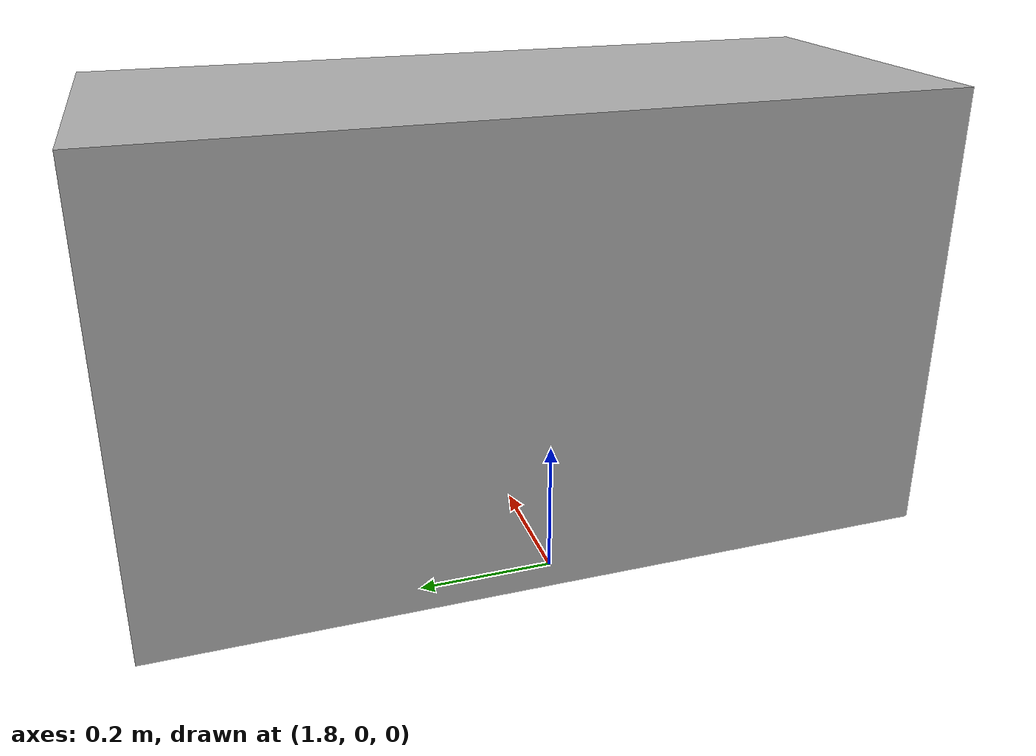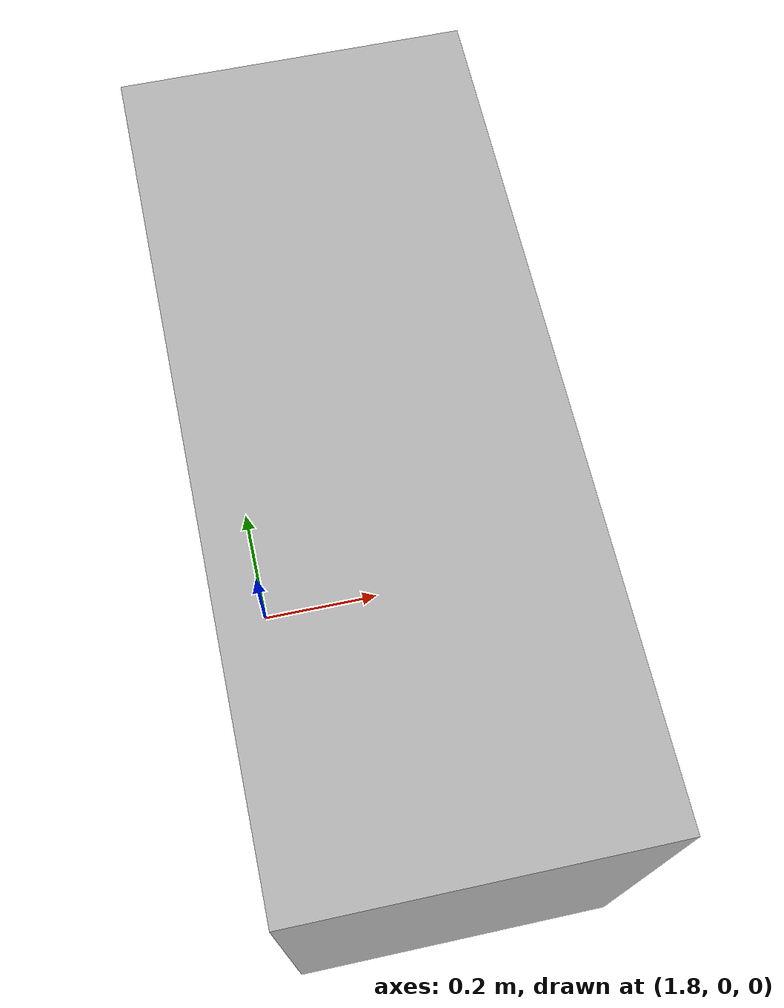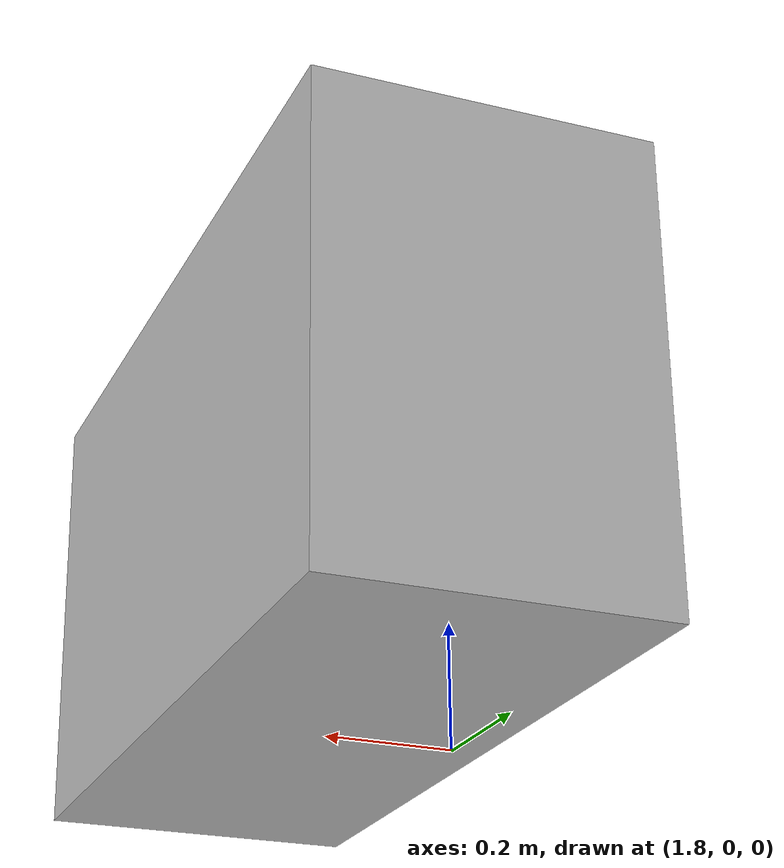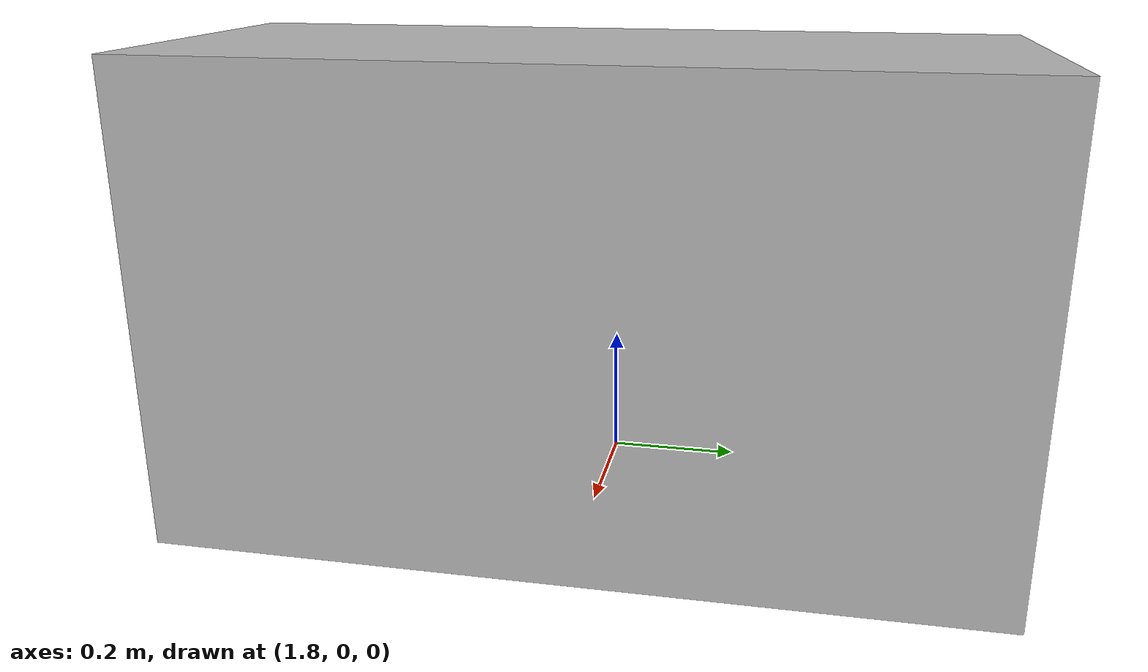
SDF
<?xml version="1.0"?>
<!-- Passive static obstacle for 2D LiDAR scan geometry qualification, no flight. -->
<sdf version="1.9">
  <model name="nidar_lidar_target">
    <static>true</static>
    <pose>2 0 0.35 0 0 0</pose>
    <link name="target">
      <collision name="collision">
        <geometry><box><size>0.5 1.2 0.7</size></box></geometry>
      </collision>
      <visual name="visual">
        <geometry><box><size>0.5 1.2 0.7</size></box></geometry>
      </visual>
    </link>
  </model>
</sdf>
